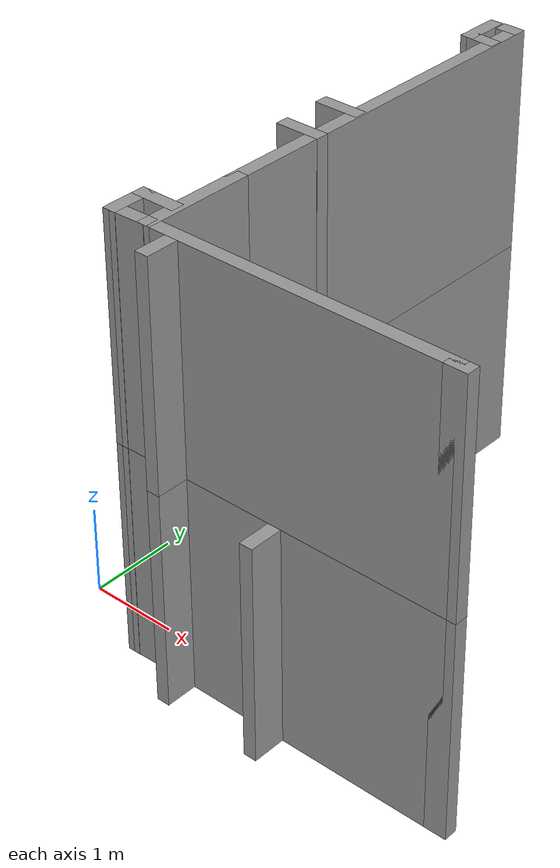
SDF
<sdf version="1.6">
 <model name="TwoStoreyBuilding">
  <link name="Wall_102">
   <pose>1.325 4.825 2.5 0 -0 0</pose>
   <visual name="Wall_102_Visual">
    <pose>0 0 1.25 0 -0 0</pose>
    <geometry><box><size>0.25 0.15 2.5</size></box></geometry>
    <material>
     <script><uri>file://media/materials/scripts/gazebo.material</uri><name>Gazebo/Grey</name></script>
     <ambient>1 1 1 1</ambient>
    </material>
    <meta><layer>1</layer></meta>
   </visual>
   <collision name="Wall_102_Collision">
    <pose>0 0 1.25 0 -0 0</pose>
    <geometry><box><size>0.25 0.15 2.5</size></box></geometry>
    <surface>
     <friction>
      <ode><mu>1</mu><mu2>1</mu2><fdir1>0 0 0</fdir1><slip1>0</slip1><slip2>0</slip2></ode>
      <torsional>
       <coefficient>1</coefficient>
       <patch_radius>0</patch_radius>
       <surface_radius>0</surface_radius>
       <use_patch_radius>1</use_patch_radius>
       <ode><slip>0</slip></ode>
      </torsional>
     </friction>
     <bounce><restitution_coefficient>0</restitution_coefficient><threshold>1e+06</threshold></bounce>
     <contact>
      <collide_without_contact>0</collide_without_contact>
      <collide_without_contact_bitmask>1</collide_without_contact_bitmask>
      <collide_bitmask>1</collide_bitmask>
      <ode>
       <soft_cfm>0</soft_cfm>
       <soft_erp>0.2</soft_erp>
       <kp>1e+13</kp>
       <kd>1</kd>
       <max_vel>0.01</max_vel>
       <min_depth>0</min_depth>
      </ode>
      <bullet>
       <split_impulse>1</split_impulse>
       <split_impulse_penetration_threshold>-0.01</split_impulse_penetration_threshold>
       <soft_cfm>0</soft_cfm>
       <soft_erp>0.2</soft_erp>
       <kp>1e+13</kp>
       <kd>1</kd>
      </bullet>
     </contact>
    </surface>
   </collision>
  </link>
  <link name="Wall_103">
   <pose>1.375 2.775 2.5 0 0 -1.5708</pose>
   <visual name="Wall_103_Visual">
    <pose>0 0 1.25 0 -0 0</pose>
    <geometry><box><size>4.25 0.15 2.5</size></box></geometry>
    <material>
     <script><uri>file://media/materials/scripts/gazebo.material</uri><name>Gazebo/Grey</name></script>
     <ambient>1 1 1 1</ambient>
    </material>
    <meta><layer>1</layer></meta>
   </visual>
   <collision name="Wall_103_Collision">
    <pose>0 0 1.25 0 -0 0</pose>
    <geometry><box><size>4.25 0.15 2.5</size></box></geometry>
    <surface>
     <friction>
      <ode><mu>1</mu><mu2>1</mu2><fdir1>0 0 0</fdir1><slip1>0</slip1><slip2>0</slip2></ode>
      <torsional>
       <coefficient>1</coefficient>
       <patch_radius>0</patch_radius>
       <surface_radius>0</surface_radius>
       <use_patch_radius>1</use_patch_radius>
       <ode><slip>0</slip></ode>
      </torsional>
     </friction>
     <bounce><restitution_coefficient>0</restitution_coefficient><threshold>1e+06</threshold></bounce>
     <contact>
      <collide_without_contact>0</collide_without_contact>
      <collide_without_contact_bitmask>1</collide_without_contact_bitmask>
      <collide_bitmask>1</collide_bitmask>
      <ode>
       <soft_cfm>0</soft_cfm>
       <soft_erp>0.2</soft_erp>
       <kp>1e+13</kp>
       <kd>1</kd>
       <max_vel>0.01</max_vel>
       <min_depth>0</min_depth>
      </ode>
      <bullet>
       <split_impulse>1</split_impulse>
       <split_impulse_penetration_threshold>-0.01</split_impulse_penetration_threshold>
       <soft_cfm>0</soft_cfm>
       <soft_erp>0.2</soft_erp>
       <kp>1e+13</kp>
       <kd>1</kd>
      </bullet>
     </contact>
    </surface>
   </collision>
  </link>
  <link name="Wall_104">
   <pose>1.375 0.175 2.5 0 0 -1.5708</pose>
   <visual name="Wall_104_Visual">
    <pose>0 0 1.25 0 -0 0</pose>
    <geometry><box><size>1.25 0.15 2.5</size></box></geometry>
    <material>
     <script><uri>file://media/materials/scripts/gazebo.material</uri><name>Gazebo/Grey</name></script>
     <ambient>1 1 1 1</ambient>
    </material>
    <meta><layer>1</layer></meta>
   </visual>
   <collision name="Wall_104_Collision">
    <pose>0 0 1.25 0 -0 0</pose>
    <geometry><box><size>1.25 0.15 2.5</size></box></geometry>
    <surface>
     <friction>
      <ode><mu>1</mu><mu2>1</mu2><fdir1>0 0 0</fdir1><slip1>0</slip1><slip2>0</slip2></ode>
      <torsional>
       <coefficient>1</coefficient>
       <patch_radius>0</patch_radius>
       <surface_radius>0</surface_radius>
       <use_patch_radius>1</use_patch_radius>
       <ode><slip>0</slip></ode>
      </torsional>
     </friction>
     <bounce><restitution_coefficient>0</restitution_coefficient><threshold>1e+06</threshold></bounce>
     <contact>
      <collide_without_contact>0</collide_without_contact>
      <collide_without_contact_bitmask>1</collide_without_contact_bitmask>
      <collide_bitmask>1</collide_bitmask>
      <ode>
       <soft_cfm>0</soft_cfm>
       <soft_erp>0.2</soft_erp>
       <kp>1e+13</kp>
       <kd>1</kd>
       <max_vel>0.01</max_vel>
       <min_depth>0</min_depth>
      </ode>
      <bullet>
       <split_impulse>1</split_impulse>
       <split_impulse_penetration_threshold>-0.01</split_impulse_penetration_threshold>
       <soft_cfm>0</soft_cfm>
       <soft_erp>0.2</soft_erp>
       <kp>1e+13</kp>
       <kd>1</kd>
      </bullet>
     </contact>
    </surface>
   </collision>
  </link>
  <link name="Wall_105">
   <pose>3.05 -0.375 2.5 0 -0 0</pose>
   <visual name="Wall_105_Visual">
    <pose>0 0 1.25 0 -0 0</pose>
    <geometry><box><size>3.5 0.15 2.5</size></box></geometry>
    <material>
     <script><uri>file://media/materials/scripts/gazebo.material</uri><name>Gazebo/Grey</name></script>
     <ambient>1 1 1 1</ambient>
    </material>
    <meta><layer>1</layer></meta>
   </visual>
   <collision name="Wall_105_Collision">
    <pose>0 0 1.25 0 -0 0</pose>
    <geometry><box><size>3.5 0.15 2.5</size></box></geometry>
    <surface>
     <friction>
      <ode><mu>1</mu><mu2>1</mu2><fdir1>0 0 0</fdir1><slip1>0</slip1><slip2>0</slip2></ode>
      <torsional>
       <coefficient>1</coefficient>
       <patch_radius>0</patch_radius>
       <surface_radius>0</surface_radius>
       <use_patch_radius>1</use_patch_radius>
       <ode><slip>0</slip></ode>
      </torsional>
     </friction>
     <bounce><restitution_coefficient>0</restitution_coefficient><threshold>1e+06</threshold></bounce>
     <contact>
      <collide_without_contact>0</collide_without_contact>
      <collide_without_contact_bitmask>1</collide_without_contact_bitmask>
      <collide_bitmask>1</collide_bitmask>
      <ode>
       <soft_cfm>0</soft_cfm>
       <soft_erp>0.2</soft_erp>
       <kp>1e+13</kp>
       <kd>1</kd>
       <max_vel>0.01</max_vel>
       <min_depth>0</min_depth>
      </ode>
      <bullet>
       <split_impulse>1</split_impulse>
       <split_impulse_penetration_threshold>-0.01</split_impulse_penetration_threshold>
       <soft_cfm>0</soft_cfm>
       <soft_erp>0.2</soft_erp>
       <kp>1e+13</kp>
       <kd>1</kd>
      </bullet>
     </contact>
    </surface>
   </collision>
  </link>
  <link name="Wall_106">
   <pose>4.775 -0.375 2.5 0 -0 0</pose>
   <visual name="Wall_106_Visual">
    <pose>0 0 1.25 0 -0 0</pose>
    <geometry><box><size>0.25 0.15 2.5</size></box></geometry>
    <material>
     <script><uri>file://media/materials/scripts/gazebo.material</uri><name>Gazebo/Grey</name></script>
     <ambient>1 1 1 1</ambient>
    </material>
    <meta><layer>1</layer></meta>
   </visual>
   <collision name="Wall_106_Collision">
    <pose>0 0 1.25 0 -0 0</pose>
    <geometry><box><size>0.25 0.15 2.5</size></box></geometry>
    <surface>
     <friction>
      <ode><mu>1</mu><mu2>1</mu2><fdir1>0 0 0</fdir1><slip1>0</slip1><slip2>0</slip2></ode>
      <torsional>
       <coefficient>1</coefficient>
       <patch_radius>0</patch_radius>
       <surface_radius>0</surface_radius>
       <use_patch_radius>1</use_patch_radius>
       <ode><slip>0</slip></ode>
      </torsional>
     </friction>
     <bounce><restitution_coefficient>0</restitution_coefficient><threshold>1e+06</threshold></bounce>
     <contact>
      <collide_without_contact>0</collide_without_contact>
      <collide_without_contact_bitmask>1</collide_without_contact_bitmask>
      <collide_bitmask>1</collide_bitmask>
      <ode>
       <soft_cfm>0</soft_cfm>
       <soft_erp>0.2</soft_erp>
       <kp>1e+13</kp>
       <kd>1</kd>
       <max_vel>0.01</max_vel>
       <min_depth>0</min_depth>
      </ode>
      <bullet>
       <split_impulse>1</split_impulse>
       <split_impulse_penetration_threshold>-0.01</split_impulse_penetration_threshold>
       <soft_cfm>0</soft_cfm>
       <soft_erp>0.2</soft_erp>
       <kp>1e+13</kp>
       <kd>1</kd>
      </bullet>
     </contact>
    </surface>
   </collision>
  </link>
  <link name="Wall_123">
   <pose>1.71402 -0.561102 2.5 0 0 -1.5708</pose>
   <visual name="Wall_123_Visual">
    <pose>0 0 1.25 0 -0 0</pose>
    <geometry><box><size>0.5 0.15 2.5</size></box></geometry>
    <material>
     <script><uri>file://media/materials/scripts/gazebo.material</uri><name>Gazebo/Grey</name></script>
     <ambient>1 1 1 1</ambient>
    </material>
    <meta><layer>1</layer></meta>
   </visual>
   <collision name="Wall_123_Collision">
    <pose>0 0 1.25 0 -0 0</pose>
    <geometry><box><size>0.5 0.15 2.5</size></box></geometry>
    <surface>
     <friction>
      <ode><mu>1</mu><mu2>1</mu2><fdir1>0 0 0</fdir1><slip1>0</slip1><slip2>0</slip2></ode>
      <torsional>
       <coefficient>1</coefficient>
       <patch_radius>0</patch_radius>
       <surface_radius>0</surface_radius>
       <use_patch_radius>1</use_patch_radius>
       <ode><slip>0</slip></ode>
      </torsional>
     </friction>
     <bounce><restitution_coefficient>0</restitution_coefficient><threshold>1e+06</threshold></bounce>
     <contact>
      <collide_without_contact>0</collide_without_contact>
      <collide_without_contact_bitmask>1</collide_without_contact_bitmask>
      <collide_bitmask>1</collide_bitmask>
      <ode>
       <soft_cfm>0</soft_cfm>
       <soft_erp>0.2</soft_erp>
       <kp>1e+13</kp>
       <kd>1</kd>
       <max_vel>0.01</max_vel>
       <min_depth>0</min_depth>
      </ode>
      <bullet>
       <split_impulse>1</split_impulse>
       <split_impulse_penetration_threshold>-0.01</split_impulse_penetration_threshold>
       <soft_cfm>0</soft_cfm>
       <soft_erp>0.2</soft_erp>
       <kp>1e+13</kp>
       <kd>1</kd>
      </bullet>
     </contact>
    </surface>
   </collision>
  </link>
  <link name="Wall_127">
   <pose>1.20108 1.80388 2.5 0 -0 3.14159</pose>
   <visual name="Wall_127_Visual">
    <pose>0 0 1.25 0 -0 0</pose>
    <geometry><box><size>0.5 0.15 2.5</size></box></geometry>
    <material>
     <script><uri>file://media/materials/scripts/gazebo.material</uri><name>Gazebo/Grey</name></script>
     <ambient>1 1 1 1</ambient>
    </material>
    <meta><layer>1</layer></meta>
   </visual>
   <collision name="Wall_127_Collision">
    <pose>0 0 1.25 0 -0 0</pose>
    <geometry><box><size>0.5 0.15 2.5</size></box></geometry>
    <surface>
     <friction>
      <ode><mu>1</mu><mu2>1</mu2><fdir1>0 0 0</fdir1><slip1>0</slip1><slip2>0</slip2></ode>
      <torsional>
       <coefficient>1</coefficient>
       <patch_radius>0</patch_radius>
       <surface_radius>0</surface_radius>
       <use_patch_radius>1</use_patch_radius>
       <ode><slip>0</slip></ode>
      </torsional>
     </friction>
     <bounce><restitution_coefficient>0</restitution_coefficient><threshold>1e+06</threshold></bounce>
     <contact>
      <collide_without_contact>0</collide_without_contact>
      <collide_without_contact_bitmask>1</collide_without_contact_bitmask>
      <collide_bitmask>1</collide_bitmask>
      <ode>
       <soft_cfm>0</soft_cfm>
       <soft_erp>0.2</soft_erp>
       <kp>1e+13</kp>
       <kd>1</kd>
       <max_vel>0.01</max_vel>
       <min_depth>0</min_depth>
      </ode>
      <bullet>
       <split_impulse>1</split_impulse>
       <split_impulse_penetration_threshold>-0.01</split_impulse_penetration_threshold>
       <soft_cfm>0</soft_cfm>
       <soft_erp>0.2</soft_erp>
       <kp>1e+13</kp>
       <kd>1</kd>
      </bullet>
     </contact>
    </surface>
   </collision>
  </link>
  <link name="Wall_128">
   <pose>1.18136 2.37591 2.5 0 -0 3.14159</pose>
   <visual name="Wall_128_Visual">
    <pose>0 0 1.25 0 -0 0</pose>
    <geometry><box><size>0.5 0.15 2.5</size></box></geometry>
    <material>
     <script><uri>file://media/materials/scripts/gazebo.material</uri><name>Gazebo/Grey</name></script>
     <ambient>1 1 1 1</ambient>
    </material>
    <meta><layer>1</layer></meta>
   </visual>
   <collision name="Wall_128_Collision">
    <pose>0 0 1.25 0 -0 0</pose>
    <geometry><box><size>0.5 0.15 2.5</size></box></geometry>
    <surface>
     <friction>
      <ode><mu>1</mu><mu2>1</mu2><fdir1>0 0 0</fdir1><slip1>0</slip1><slip2>0</slip2></ode>
      <torsional>
       <coefficient>1</coefficient>
       <patch_radius>0</patch_radius>
       <surface_radius>0</surface_radius>
       <use_patch_radius>1</use_patch_radius>
       <ode><slip>0</slip></ode>
      </torsional>
     </friction>
     <bounce><restitution_coefficient>0</restitution_coefficient><threshold>1e+06</threshold></bounce>
     <contact>
      <collide_without_contact>0</collide_without_contact>
      <collide_without_contact_bitmask>1</collide_without_contact_bitmask>
      <collide_bitmask>1</collide_bitmask>
      <ode>
       <soft_cfm>0</soft_cfm>
       <soft_erp>0.2</soft_erp>
       <kp>1e+13</kp>
       <kd>1</kd>
       <max_vel>0.01</max_vel>
       <min_depth>0</min_depth>
      </ode>
      <bullet>
       <split_impulse>1</split_impulse>
       <split_impulse_penetration_threshold>-0.01</split_impulse_penetration_threshold>
       <soft_cfm>0</soft_cfm>
       <soft_erp>0.2</soft_erp>
       <kp>1e+13</kp>
       <kd>1</kd>
      </bullet>
     </contact>
    </surface>
   </collision>
  </link>
  <link name="Wall_129">
   <pose>1.11308 4.6403 2.5 0 0 -1.5708</pose>
   <visual name="Wall_129_Visual">
    <pose>0 0 1.25 0 -0 0</pose>
    <geometry><box><size>0.5 0.15 2.5</size></box></geometry>
    <material>
     <script><uri>file://media/materials/scripts/gazebo.material</uri><name>Gazebo/Grey</name></script>
     <ambient>1 1 1 1</ambient>
    </material>
    <meta><layer>1</layer></meta>
   </visual>
   <collision name="Wall_129_Collision">
    <pose>0 0 1.25 0 -0 0</pose>
    <geometry><box><size>0.5 0.15 2.5</size></box></geometry>
    <surface>
     <friction>
      <ode><mu>1</mu><mu2>1</mu2><fdir1>0 0 0</fdir1><slip1>0</slip1><slip2>0</slip2></ode>
      <torsional>
       <coefficient>1</coefficient>
       <patch_radius>0</patch_radius>
       <surface_radius>0</surface_radius>
       <use_patch_radius>1</use_patch_radius>
       <ode><slip>0</slip></ode>
      </torsional>
     </friction>
     <bounce><restitution_coefficient>0</restitution_coefficient><threshold>1e+06</threshold></bounce>
     <contact>
      <collide_without_contact>0</collide_without_contact>
      <collide_without_contact_bitmask>1</collide_without_contact_bitmask>
      <collide_bitmask>1</collide_bitmask>
      <ode>
       <soft_cfm>0</soft_cfm>
       <soft_erp>0.2</soft_erp>
       <kp>1e+13</kp>
       <kd>1</kd>
       <max_vel>0.01</max_vel>
       <min_depth>0</min_depth>
      </ode>
      <bullet>
       <split_impulse>1</split_impulse>
       <split_impulse_penetration_threshold>-0.01</split_impulse_penetration_threshold>
       <soft_cfm>0</soft_cfm>
       <soft_erp>0.2</soft_erp>
       <kp>1e+13</kp>
       <kd>1</kd>
      </bullet>
     </contact>
    </surface>
   </collision>
  </link>
  <link name="Wall_130">
   <pose>1.238 4.45948 2.5 0 0 -0.046529</pose>
   <visual name="Wall_130_Visual">
    <pose>0 0 1.25 0 -0 0</pose>
    <geometry><box><size>0.400127 0.15 2.5</size></box></geometry>
    <material>
     <script><uri>file://media/materials/scripts/gazebo.material</uri><name>Gazebo/Grey</name></script>
     <ambient>1 1 1 1</ambient>
    </material>
    <meta><layer>1</layer></meta>
   </visual>
   <collision name="Wall_130_Collision">
    <pose>0 0 1.25 0 -0 0</pose>
    <geometry><box><size>0.400127 0.15 2.5</size></box></geometry>
    <surface>
     <friction>
      <ode><mu>1</mu><mu2>1</mu2><fdir1>0 0 0</fdir1><slip1>0</slip1><slip2>0</slip2></ode>
      <torsional>
       <coefficient>1</coefficient>
       <patch_radius>0</patch_radius>
       <surface_radius>0</surface_radius>
       <use_patch_radius>1</use_patch_radius>
       <ode><slip>0</slip></ode>
      </torsional>
     </friction>
     <bounce><restitution_coefficient>0</restitution_coefficient><threshold>1e+06</threshold></bounce>
     <contact>
      <collide_without_contact>0</collide_without_contact>
      <collide_without_contact_bitmask>1</collide_without_contact_bitmask>
      <collide_bitmask>1</collide_bitmask>
      <ode>
       <soft_cfm>0</soft_cfm>
       <soft_erp>0.2</soft_erp>
       <kp>1e+13</kp>
       <kd>1</kd>
       <max_vel>0.01</max_vel>
       <min_depth>0</min_depth>
      </ode>
      <bullet>
       <split_impulse>1</split_impulse>
       <split_impulse_penetration_threshold>-0.01</split_impulse_penetration_threshold>
       <soft_cfm>0</soft_cfm>
       <soft_erp>0.2</soft_erp>
       <kp>1e+13</kp>
       <kd>1</kd>
      </bullet>
     </contact>
    </surface>
   </collision>
  </link>
  <link name="Wall_133">
   <pose>1.14545 -0.037473 2.5 0 -0 3.14159</pose>
   <visual name="Wall_133_Visual">
    <pose>0 0 1.25 0 -0 0</pose>
    <geometry><box><size>0.5 0.15 2.5</size></box></geometry>
    <material>
     <script><uri>file://media/materials/scripts/gazebo.material</uri><name>Gazebo/Grey</name></script>
     <ambient>1 1 1 1</ambient>
    </material>
    <meta><layer>1</layer></meta>
   </visual>
   <collision name="Wall_133_Collision">
    <pose>0 0 1.25 0 -0 0</pose>
    <geometry><box><size>0.5 0.15 2.5</size></box></geometry>
    <surface>
     <friction>
      <ode><mu>1</mu><mu2>1</mu2><fdir1>0 0 0</fdir1><slip1>0</slip1><slip2>0</slip2></ode>
      <torsional>
       <coefficient>1</coefficient>
       <patch_radius>0</patch_radius>
       <surface_radius>0</surface_radius>
       <use_patch_radius>1</use_patch_radius>
       <ode><slip>0</slip></ode>
      </torsional>
     </friction>
     <bounce><restitution_coefficient>0</restitution_coefficient><threshold>1e+06</threshold></bounce>
     <contact>
      <collide_without_contact>0</collide_without_contact>
      <collide_without_contact_bitmask>1</collide_without_contact_bitmask>
      <collide_bitmask>1</collide_bitmask>
      <ode>
       <soft_cfm>0</soft_cfm>
       <soft_erp>0.2</soft_erp>
       <kp>1e+13</kp>
       <kd>1</kd>
       <max_vel>0.01</max_vel>
       <min_depth>0</min_depth>
      </ode>
      <bullet>
       <split_impulse>1</split_impulse>
       <split_impulse_penetration_threshold>-0.01</split_impulse_penetration_threshold>
       <soft_cfm>0</soft_cfm>
       <soft_erp>0.2</soft_erp>
       <kp>1e+13</kp>
       <kd>1</kd>
      </bullet>
     </contact>
    </surface>
   </collision>
  </link>
  <link name="Wall_134">
   <pose>0.97045 -0.212473 2.5 0 0 -1.5708</pose>
   <visual name="Wall_134_Visual">
    <pose>0 0 1.25 0 -0 0</pose>
    <geometry><box><size>0.5 0.15 2.5</size></box></geometry>
    <material>
     <script><uri>file://media/materials/scripts/gazebo.material</uri><name>Gazebo/Grey</name></script>
     <ambient>1 1 1 1</ambient>
    </material>
    <meta><layer>1</layer></meta>
   </visual>
   <collision name="Wall_134_Collision">
    <pose>0 0 1.25 0 -0 0</pose>
    <geometry><box><size>0.5 0.15 2.5</size></box></geometry>
    <surface>
     <friction>
      <ode><mu>1</mu><mu2>1</mu2><fdir1>0 0 0</fdir1><slip1>0</slip1><slip2>0</slip2></ode>
      <torsional>
       <coefficient>1</coefficient>
       <patch_radius>0</patch_radius>
       <surface_radius>0</surface_radius>
       <use_patch_radius>1</use_patch_radius>
       <ode><slip>0</slip></ode>
      </torsional>
     </friction>
     <bounce><restitution_coefficient>0</restitution_coefficient><threshold>1e+06</threshold></bounce>
     <contact>
      <collide_without_contact>0</collide_without_contact>
      <collide_without_contact_bitmask>1</collide_without_contact_bitmask>
      <collide_bitmask>1</collide_bitmask>
      <ode>
       <soft_cfm>0</soft_cfm>
       <soft_erp>0.2</soft_erp>
       <kp>1e+13</kp>
       <kd>1</kd>
       <max_vel>0.01</max_vel>
       <min_depth>0</min_depth>
      </ode>
      <bullet>
       <split_impulse>1</split_impulse>
       <split_impulse_penetration_threshold>-0.01</split_impulse_penetration_threshold>
       <soft_cfm>0</soft_cfm>
       <soft_erp>0.2</soft_erp>
       <kp>1e+13</kp>
       <kd>1</kd>
      </bullet>
     </contact>
    </surface>
   </collision>
  </link>
  <link name="Wall_135">
   <pose>1.17273 -0.381237 2.5 0 -0 0.030821</pose>
   <visual name="Wall_135_Visual">
    <pose>0 0 1.25 0 -0 0</pose>
    <geometry><box><size>0.554742 0.15 2.5</size></box></geometry>
    <material>
     <script><uri>file://media/materials/scripts/gazebo.material</uri><name>Gazebo/Grey</name></script>
     <ambient>1 1 1 1</ambient>
    </material>
    <meta><layer>1</layer></meta>
   </visual>
   <collision name="Wall_135_Collision">
    <pose>0 0 1.25 0 -0 0</pose>
    <geometry><box><size>0.554742 0.15 2.5</size></box></geometry>
    <surface>
     <friction>
      <ode><mu>1</mu><mu2>1</mu2><fdir1>0 0 0</fdir1><slip1>0</slip1><slip2>0</slip2></ode>
      <torsional>
       <coefficient>1</coefficient>
       <patch_radius>0</patch_radius>
       <surface_radius>0</surface_radius>
       <use_patch_radius>1</use_patch_radius>
       <ode><slip>0</slip></ode>
      </torsional>
     </friction>
     <bounce><restitution_coefficient>0</restitution_coefficient><threshold>1e+06</threshold></bounce>
     <contact>
      <collide_without_contact>0</collide_without_contact>
      <collide_without_contact_bitmask>1</collide_without_contact_bitmask>
      <collide_bitmask>1</collide_bitmask>
      <ode>
       <soft_cfm>0</soft_cfm>
       <soft_erp>0.2</soft_erp>
       <kp>1e+13</kp>
       <kd>1</kd>
       <max_vel>0.01</max_vel>
       <min_depth>0</min_depth>
      </ode>
      <bullet>
       <split_impulse>1</split_impulse>
       <split_impulse_penetration_threshold>-0.01</split_impulse_penetration_threshold>
       <soft_cfm>0</soft_cfm>
       <soft_erp>0.2</soft_erp>
       <kp>1e+13</kp>
       <kd>1</kd>
      </bullet>
     </contact>
    </surface>
   </collision>
  </link>
  <link name="Wall_25">
   <pose>1.325 4.825 0 0 -0 0</pose>
   <visual name="Wall_25_Visual">
    <pose>0 0 1.25 0 -0 0</pose>
    <geometry><box><size>0.25 0.15 2.5</size></box></geometry>
    <material>
     <script><uri>file://media/materials/scripts/gazebo.material</uri><name>Gazebo/Grey</name></script>
     <ambient>1 1 1 1</ambient>
    </material>
    <meta><layer>0</layer></meta>
   </visual>
   <collision name="Wall_25_Collision">
    <pose>0 0 1.25 0 -0 0</pose>
    <geometry><box><size>0.25 0.15 2.5</size></box></geometry>
    <surface>
     <friction>
      <ode><mu>1</mu><mu2>1</mu2><fdir1>0 0 0</fdir1><slip1>0</slip1><slip2>0</slip2></ode>
      <torsional>
       <coefficient>1</coefficient>
       <patch_radius>0</patch_radius>
       <surface_radius>0</surface_radius>
       <use_patch_radius>1</use_patch_radius>
       <ode><slip>0</slip></ode>
      </torsional>
     </friction>
     <bounce><restitution_coefficient>0</restitution_coefficient><threshold>1e+06</threshold></bounce>
     <contact>
      <collide_without_contact>0</collide_without_contact>
      <collide_without_contact_bitmask>1</collide_without_contact_bitmask>
      <collide_bitmask>1</collide_bitmask>
      <ode>
       <soft_cfm>0</soft_cfm>
       <soft_erp>0.2</soft_erp>
       <kp>1e+13</kp>
       <kd>1</kd>
       <max_vel>0.01</max_vel>
       <min_depth>0</min_depth>
      </ode>
      <bullet>
       <split_impulse>1</split_impulse>
       <split_impulse_penetration_threshold>-0.01</split_impulse_penetration_threshold>
       <soft_cfm>0</soft_cfm>
       <soft_erp>0.2</soft_erp>
       <kp>1e+13</kp>
       <kd>1</kd>
      </bullet>
     </contact>
    </surface>
   </collision>
  </link>
  <link name="Wall_26">
   <pose>1.375 2.775 0 0 0 -1.5708</pose>
   <visual name="Wall_26_Visual">
    <pose>0 0 1.25 0 -0 0</pose>
    <geometry><box><size>4.25 0.15 2.5</size></box></geometry>
    <material>
     <script><uri>file://media/materials/scripts/gazebo.material</uri><name>Gazebo/Grey</name></script>
     <ambient>1 1 1 1</ambient>
    </material>
    <meta><layer>0</layer></meta>
   </visual>
   <collision name="Wall_26_Collision">
    <pose>0 0 1.25 0 -0 0</pose>
    <geometry><box><size>4.25 0.15 2.5</size></box></geometry>
    <surface>
     <friction>
      <ode><mu>1</mu><mu2>1</mu2><fdir1>0 0 0</fdir1><slip1>0</slip1><slip2>0</slip2></ode>
      <torsional>
       <coefficient>1</coefficient>
       <patch_radius>0</patch_radius>
       <surface_radius>0</surface_radius>
       <use_patch_radius>1</use_patch_radius>
       <ode><slip>0</slip></ode>
      </torsional>
     </friction>
     <bounce><restitution_coefficient>0</restitution_coefficient><threshold>1e+06</threshold></bounce>
     <contact>
      <collide_without_contact>0</collide_without_contact>
      <collide_without_contact_bitmask>1</collide_without_contact_bitmask>
      <collide_bitmask>1</collide_bitmask>
      <ode>
       <soft_cfm>0</soft_cfm>
       <soft_erp>0.2</soft_erp>
       <kp>1e+13</kp>
       <kd>1</kd>
       <max_vel>0.01</max_vel>
       <min_depth>0</min_depth>
      </ode>
      <bullet>
       <split_impulse>1</split_impulse>
       <split_impulse_penetration_threshold>-0.01</split_impulse_penetration_threshold>
       <soft_cfm>0</soft_cfm>
       <soft_erp>0.2</soft_erp>
       <kp>1e+13</kp>
       <kd>1</kd>
      </bullet>
     </contact>
    </surface>
   </collision>
  </link>
  <link name="Wall_28">
   <pose>1.375 0.175 0 0 0 -1.5708</pose>
   <visual name="Wall_28_Visual">
    <pose>0 0 1.25 0 -0 0</pose>
    <geometry><box><size>1.25 0.15 2.5</size></box></geometry>
    <material>
     <script><uri>file://media/materials/scripts/gazebo.material</uri><name>Gazebo/Grey</name></script>
     <ambient>1 1 1 1</ambient>
    </material>
    <meta><layer>0</layer></meta>
   </visual>
   <collision name="Wall_28_Collision">
    <pose>0 0 1.25 0 -0 0</pose>
    <geometry><box><size>1.25 0.15 2.5</size></box></geometry>
    <surface>
     <friction>
      <ode><mu>1</mu><mu2>1</mu2><fdir1>0 0 0</fdir1><slip1>0</slip1><slip2>0</slip2></ode>
      <torsional>
       <coefficient>1</coefficient>
       <patch_radius>0</patch_radius>
       <surface_radius>0</surface_radius>
       <use_patch_radius>1</use_patch_radius>
       <ode><slip>0</slip></ode>
      </torsional>
     </friction>
     <bounce><restitution_coefficient>0</restitution_coefficient><threshold>1e+06</threshold></bounce>
     <contact>
      <collide_without_contact>0</collide_without_contact>
      <collide_without_contact_bitmask>1</collide_without_contact_bitmask>
      <collide_bitmask>1</collide_bitmask>
      <ode>
       <soft_cfm>0</soft_cfm>
       <soft_erp>0.2</soft_erp>
       <kp>1e+13</kp>
       <kd>1</kd>
       <max_vel>0.01</max_vel>
       <min_depth>0</min_depth>
      </ode>
      <bullet>
       <split_impulse>1</split_impulse>
       <split_impulse_penetration_threshold>-0.01</split_impulse_penetration_threshold>
       <soft_cfm>0</soft_cfm>
       <soft_erp>0.2</soft_erp>
       <kp>1e+13</kp>
       <kd>1</kd>
      </bullet>
     </contact>
    </surface>
   </collision>
  </link>
  <link name="Wall_29">
   <pose>3.05 -0.375 0 0 -0 0</pose>
   <visual name="Wall_29_Visual">
    <pose>0 0 1.25 0 -0 0</pose>
    <geometry><box><size>3.5 0.15 2.5</size></box></geometry>
    <material>
     <script><uri>file://media/materials/scripts/gazebo.material</uri><name>Gazebo/Grey</name></script>
     <ambient>1 1 1 1</ambient>
    </material>
    <meta><layer>0</layer></meta>
   </visual>
   <collision name="Wall_29_Collision">
    <pose>0 0 1.25 0 -0 0</pose>
    <geometry><box><size>3.5 0.15 2.5</size></box></geometry>
    <surface>
     <friction>
      <ode><mu>1</mu><mu2>1</mu2><fdir1>0 0 0</fdir1><slip1>0</slip1><slip2>0</slip2></ode>
      <torsional>
       <coefficient>1</coefficient>
       <patch_radius>0</patch_radius>
       <surface_radius>0</surface_radius>
       <use_patch_radius>1</use_patch_radius>
       <ode><slip>0</slip></ode>
      </torsional>
     </friction>
     <bounce><restitution_coefficient>0</restitution_coefficient><threshold>1e+06</threshold></bounce>
     <contact>
      <collide_without_contact>0</collide_without_contact>
      <collide_without_contact_bitmask>1</collide_without_contact_bitmask>
      <collide_bitmask>1</collide_bitmask>
      <ode>
       <soft_cfm>0</soft_cfm>
       <soft_erp>0.2</soft_erp>
       <kp>1e+13</kp>
       <kd>1</kd>
       <max_vel>0.01</max_vel>
       <min_depth>0</min_depth>
      </ode>
      <bullet>
       <split_impulse>1</split_impulse>
       <split_impulse_penetration_threshold>-0.01</split_impulse_penetration_threshold>
       <soft_cfm>0</soft_cfm>
       <soft_erp>0.2</soft_erp>
       <kp>1e+13</kp>
       <kd>1</kd>
      </bullet>
     </contact>
    </surface>
   </collision>
  </link>
  <link name="Wall_30">
   <pose>4.775 -0.375 0 0 -0 0</pose>
   <visual name="Wall_30_Visual">
    <pose>0 0 1.25 0 -0 0</pose>
    <geometry><box><size>0.25 0.15 2.5</size></box></geometry>
    <material>
     <script><uri>file://media/materials/scripts/gazebo.material</uri><name>Gazebo/Grey</name></script>
     <ambient>1 1 1 1</ambient>
    </material>
    <meta><layer>0</layer></meta>
   </visual>
   <collision name="Wall_30_Collision">
    <pose>0 0 1.25 0 -0 0</pose>
    <geometry><box><size>0.25 0.15 2.5</size></box></geometry>
    <surface>
     <friction>
      <ode><mu>1</mu><mu2>1</mu2><fdir1>0 0 0</fdir1><slip1>0</slip1><slip2>0</slip2></ode>
      <torsional>
       <coefficient>1</coefficient>
       <patch_radius>0</patch_radius>
       <surface_radius>0</surface_radius>
       <use_patch_radius>1</use_patch_radius>
       <ode><slip>0</slip></ode>
      </torsional>
     </friction>
     <bounce><restitution_coefficient>0</restitution_coefficient><threshold>1e+06</threshold></bounce>
     <contact>
      <collide_without_contact>0</collide_without_contact>
      <collide_without_contact_bitmask>1</collide_without_contact_bitmask>
      <collide_bitmask>1</collide_bitmask>
      <ode>
       <soft_cfm>0</soft_cfm>
       <soft_erp>0.2</soft_erp>
       <kp>1e+13</kp>
       <kd>1</kd>
       <max_vel>0.01</max_vel>
       <min_depth>0</min_depth>
      </ode>
      <bullet>
       <split_impulse>1</split_impulse>
       <split_impulse_penetration_threshold>-0.01</split_impulse_penetration_threshold>
       <soft_cfm>0</soft_cfm>
       <soft_erp>0.2</soft_erp>
       <kp>1e+13</kp>
       <kd>1</kd>
      </bullet>
     </contact>
    </surface>
   </collision>
  </link>
  <link name="Wall_54">
   <pose>2.86439 -0.57614 0 0 0 -1.5708</pose>
   <visual name="Wall_54_Visual">
    <pose>0 0 1.25 0 -0 0</pose>
    <geometry><box><size>0.5 0.15 2.5</size></box></geometry>
    <material>
     <script><uri>file://media/materials/scripts/gazebo.material</uri><name>Gazebo/Grey</name></script>
     <ambient>1 1 1 1</ambient>
    </material>
    <meta><layer>0</layer></meta>
   </visual>
   <collision name="Wall_54_Collision">
    <pose>0 0 1.25 0 -0 0</pose>
    <geometry><box><size>0.5 0.15 2.5</size></box></geometry>
    <surface>
     <friction>
      <ode><mu>1</mu><mu2>1</mu2><fdir1>0 0 0</fdir1><slip1>0</slip1><slip2>0</slip2></ode>
      <torsional>
       <coefficient>1</coefficient>
       <patch_radius>0</patch_radius>
       <surface_radius>0</surface_radius>
       <use_patch_radius>1</use_patch_radius>
       <ode><slip>0</slip></ode>
      </torsional>
     </friction>
     <bounce><restitution_coefficient>0</restitution_coefficient><threshold>1e+06</threshold></bounce>
     <contact>
      <collide_without_contact>0</collide_without_contact>
      <collide_without_contact_bitmask>1</collide_without_contact_bitmask>
      <collide_bitmask>1</collide_bitmask>
      <ode>
       <soft_cfm>0</soft_cfm>
       <soft_erp>0.2</soft_erp>
       <kp>1e+13</kp>
       <kd>1</kd>
       <max_vel>0.01</max_vel>
       <min_depth>0</min_depth>
      </ode>
      <bullet>
       <split_impulse>1</split_impulse>
       <split_impulse_penetration_threshold>-0.01</split_impulse_penetration_threshold>
       <soft_cfm>0</soft_cfm>
       <soft_erp>0.2</soft_erp>
       <kp>1e+13</kp>
       <kd>1</kd>
      </bullet>
     </contact>
    </surface>
   </collision>
  </link>
  <link name="Wall_57">
   <pose>1.71402 -0.561102 0 0 0 -1.5708</pose>
   <visual name="Wall_57_Visual">
    <pose>0 0 1.25 0 -0 0</pose>
    <geometry><box><size>0.5 0.15 2.5</size></box></geometry>
    <material>
     <script><uri>file://media/materials/scripts/gazebo.material</uri><name>Gazebo/Grey</name></script>
     <ambient>1 1 1 1</ambient>
    </material>
    <meta><layer>0</layer></meta>
   </visual>
   <collision name="Wall_57_Collision">
    <pose>0 0 1.25 0 -0 0</pose>
    <geometry><box><size>0.5 0.15 2.5</size></box></geometry>
    <surface>
     <friction>
      <ode><mu>1</mu><mu2>1</mu2><fdir1>0 0 0</fdir1><slip1>0</slip1><slip2>0</slip2></ode>
      <torsional>
       <coefficient>1</coefficient>
       <patch_radius>0</patch_radius>
       <surface_radius>0</surface_radius>
       <use_patch_radius>1</use_patch_radius>
       <ode><slip>0</slip></ode>
      </torsional>
     </friction>
     <bounce><restitution_coefficient>0</restitution_coefficient><threshold>1e+06</threshold></bounce>
     <contact>
      <collide_without_contact>0</collide_without_contact>
      <collide_without_contact_bitmask>1</collide_without_contact_bitmask>
      <collide_bitmask>1</collide_bitmask>
      <ode>
       <soft_cfm>0</soft_cfm>
       <soft_erp>0.2</soft_erp>
       <kp>1e+13</kp>
       <kd>1</kd>
       <max_vel>0.01</max_vel>
       <min_depth>0</min_depth>
      </ode>
      <bullet>
       <split_impulse>1</split_impulse>
       <split_impulse_penetration_threshold>-0.01</split_impulse_penetration_threshold>
       <soft_cfm>0</soft_cfm>
       <soft_erp>0.2</soft_erp>
       <kp>1e+13</kp>
       <kd>1</kd>
      </bullet>
     </contact>
    </surface>
   </collision>
  </link>
  <link name="Wall_63">
   <pose>1.20108 1.80388 0 0 -0 3.14159</pose>
   <visual name="Wall_63_Visual">
    <pose>0 0 1.25 0 -0 0</pose>
    <geometry><box><size>0.5 0.15 2.5</size></box></geometry>
    <material>
     <script><uri>file://media/materials/scripts/gazebo.material</uri><name>Gazebo/Grey</name></script>
     <ambient>1 1 1 1</ambient>
    </material>
    <meta><layer>0</layer></meta>
   </visual>
   <collision name="Wall_63_Collision">
    <pose>0 0 1.25 0 -0 0</pose>
    <geometry><box><size>0.5 0.15 2.5</size></box></geometry>
    <surface>
     <friction>
      <ode><mu>1</mu><mu2>1</mu2><fdir1>0 0 0</fdir1><slip1>0</slip1><slip2>0</slip2></ode>
      <torsional>
       <coefficient>1</coefficient>
       <patch_radius>0</patch_radius>
       <surface_radius>0</surface_radius>
       <use_patch_radius>1</use_patch_radius>
       <ode><slip>0</slip></ode>
      </torsional>
     </friction>
     <bounce><restitution_coefficient>0</restitution_coefficient><threshold>1e+06</threshold></bounce>
     <contact>
      <collide_without_contact>0</collide_without_contact>
      <collide_without_contact_bitmask>1</collide_without_contact_bitmask>
      <collide_bitmask>1</collide_bitmask>
      <ode>
       <soft_cfm>0</soft_cfm>
       <soft_erp>0.2</soft_erp>
       <kp>1e+13</kp>
       <kd>1</kd>
       <max_vel>0.01</max_vel>
       <min_depth>0</min_depth>
      </ode>
      <bullet>
       <split_impulse>1</split_impulse>
       <split_impulse_penetration_threshold>-0.01</split_impulse_penetration_threshold>
       <soft_cfm>0</soft_cfm>
       <soft_erp>0.2</soft_erp>
       <kp>1e+13</kp>
       <kd>1</kd>
      </bullet>
     </contact>
    </surface>
   </collision>
  </link>
  <link name="Wall_65">
   <pose>1.18136 2.37591 0 0 -0 3.14159</pose>
   <visual name="Wall_65_Visual">
    <pose>0 0 1.25 0 -0 0</pose>
    <geometry><box><size>0.5 0.15 2.5</size></box></geometry>
    <material>
     <script><uri>file://media/materials/scripts/gazebo.material</uri><name>Gazebo/Grey</name></script>
     <ambient>1 1 1 1</ambient>
    </material>
    <meta><layer>0</layer></meta>
   </visual>
   <collision name="Wall_65_Collision">
    <pose>0 0 1.25 0 -0 0</pose>
    <geometry><box><size>0.5 0.15 2.5</size></box></geometry>
    <surface>
     <friction>
      <ode><mu>1</mu><mu2>1</mu2><fdir1>0 0 0</fdir1><slip1>0</slip1><slip2>0</slip2></ode>
      <torsional>
       <coefficient>1</coefficient>
       <patch_radius>0</patch_radius>
       <surface_radius>0</surface_radius>
       <use_patch_radius>1</use_patch_radius>
       <ode><slip>0</slip></ode>
      </torsional>
     </friction>
     <bounce><restitution_coefficient>0</restitution_coefficient><threshold>1e+06</threshold></bounce>
     <contact>
      <collide_without_contact>0</collide_without_contact>
      <collide_without_contact_bitmask>1</collide_without_contact_bitmask>
      <collide_bitmask>1</collide_bitmask>
      <ode>
       <soft_cfm>0</soft_cfm>
       <soft_erp>0.2</soft_erp>
       <kp>1e+13</kp>
       <kd>1</kd>
       <max_vel>0.01</max_vel>
       <min_depth>0</min_depth>
      </ode>
      <bullet>
       <split_impulse>1</split_impulse>
       <split_impulse_penetration_threshold>-0.01</split_impulse_penetration_threshold>
       <soft_cfm>0</soft_cfm>
       <soft_erp>0.2</soft_erp>
       <kp>1e+13</kp>
       <kd>1</kd>
      </bullet>
     </contact>
    </surface>
   </collision>
  </link>
  <link name="Wall_68">
   <pose>1.11308 4.6403 0 0 0 -1.5708</pose>
   <visual name="Wall_68_Visual">
    <pose>0 0 1.25 0 -0 0</pose>
    <geometry><box><size>0.5 0.15 2.5</size></box></geometry>
    <material>
     <script><uri>file://media/materials/scripts/gazebo.material</uri><name>Gazebo/Grey</name></script>
     <ambient>1 1 1 1</ambient>
    </material>
    <meta><layer>0</layer></meta>
   </visual>
   <collision name="Wall_68_Collision">
    <pose>0 0 1.25 0 -0 0</pose>
    <geometry><box><size>0.5 0.15 2.5</size></box></geometry>
    <surface>
     <friction>
      <ode><mu>1</mu><mu2>1</mu2><fdir1>0 0 0</fdir1><slip1>0</slip1><slip2>0</slip2></ode>
      <torsional>
       <coefficient>1</coefficient>
       <patch_radius>0</patch_radius>
       <surface_radius>0</surface_radius>
       <use_patch_radius>1</use_patch_radius>
       <ode><slip>0</slip></ode>
      </torsional>
     </friction>
     <bounce><restitution_coefficient>0</restitution_coefficient><threshold>1e+06</threshold></bounce>
     <contact>
      <collide_without_contact>0</collide_without_contact>
      <collide_without_contact_bitmask>1</collide_without_contact_bitmask>
      <collide_bitmask>1</collide_bitmask>
      <ode>
       <soft_cfm>0</soft_cfm>
       <soft_erp>0.2</soft_erp>
       <kp>1e+13</kp>
       <kd>1</kd>
       <max_vel>0.01</max_vel>
       <min_depth>0</min_depth>
      </ode>
      <bullet>
       <split_impulse>1</split_impulse>
       <split_impulse_penetration_threshold>-0.01</split_impulse_penetration_threshold>
       <soft_cfm>0</soft_cfm>
       <soft_erp>0.2</soft_erp>
       <kp>1e+13</kp>
       <kd>1</kd>
      </bullet>
     </contact>
    </surface>
   </collision>
  </link>
  <link name="Wall_69">
   <pose>1.238 4.45948 0 0 0 -0.046529</pose>
   <visual name="Wall_69_Visual">
    <pose>0 0 1.25 0 -0 0</pose>
    <geometry><box><size>0.400127 0.15 2.5</size></box></geometry>
    <material>
     <script><uri>file://media/materials/scripts/gazebo.material</uri><name>Gazebo/Grey</name></script>
     <ambient>1 1 1 1</ambient>
    </material>
    <meta><layer>0</layer></meta>
   </visual>
   <collision name="Wall_69_Collision">
    <pose>0 0 1.25 0 -0 0</pose>
    <geometry><box><size>0.400127 0.15 2.5</size></box></geometry>
    <surface>
     <friction>
      <ode><mu>1</mu><mu2>1</mu2><fdir1>0 0 0</fdir1><slip1>0</slip1><slip2>0</slip2></ode>
      <torsional>
       <coefficient>1</coefficient>
       <patch_radius>0</patch_radius>
       <surface_radius>0</surface_radius>
       <use_patch_radius>1</use_patch_radius>
       <ode><slip>0</slip></ode>
      </torsional>
     </friction>
     <bounce><restitution_coefficient>0</restitution_coefficient><threshold>1e+06</threshold></bounce>
     <contact>
      <collide_without_contact>0</collide_without_contact>
      <collide_without_contact_bitmask>1</collide_without_contact_bitmask>
      <collide_bitmask>1</collide_bitmask>
      <ode>
       <soft_cfm>0</soft_cfm>
       <soft_erp>0.2</soft_erp>
       <kp>1e+13</kp>
       <kd>1</kd>
       <max_vel>0.01</max_vel>
       <min_depth>0</min_depth>
      </ode>
      <bullet>
       <split_impulse>1</split_impulse>
       <split_impulse_penetration_threshold>-0.01</split_impulse_penetration_threshold>
       <soft_cfm>0</soft_cfm>
       <soft_erp>0.2</soft_erp>
       <kp>1e+13</kp>
       <kd>1</kd>
      </bullet>
     </contact>
    </surface>
   </collision>
  </link>
  <link name="Wall_75">
   <pose>1.14545 -0.037473 0 0 -0 3.14159</pose>
   <visual name="Wall_75_Visual">
    <pose>0 0 1.25 0 -0 0</pose>
    <geometry><box><size>0.5 0.15 2.5</size></box></geometry>
    <material>
     <script><uri>file://media/materials/scripts/gazebo.material</uri><name>Gazebo/Grey</name></script>
     <ambient>1 1 1 1</ambient>
    </material>
    <meta><layer>0</layer></meta>
   </visual>
   <collision name="Wall_75_Collision">
    <pose>0 0 1.25 0 -0 0</pose>
    <geometry><box><size>0.5 0.15 2.5</size></box></geometry>
    <surface>
     <friction>
      <ode><mu>1</mu><mu2>1</mu2><fdir1>0 0 0</fdir1><slip1>0</slip1><slip2>0</slip2></ode>
      <torsional>
       <coefficient>1</coefficient>
       <patch_radius>0</patch_radius>
       <surface_radius>0</surface_radius>
       <use_patch_radius>1</use_patch_radius>
       <ode><slip>0</slip></ode>
      </torsional>
     </friction>
     <bounce><restitution_coefficient>0</restitution_coefficient><threshold>1e+06</threshold></bounce>
     <contact>
      <collide_without_contact>0</collide_without_contact>
      <collide_without_contact_bitmask>1</collide_without_contact_bitmask>
      <collide_bitmask>1</collide_bitmask>
      <ode>
       <soft_cfm>0</soft_cfm>
       <soft_erp>0.2</soft_erp>
       <kp>1e+13</kp>
       <kd>1</kd>
       <max_vel>0.01</max_vel>
       <min_depth>0</min_depth>
      </ode>
      <bullet>
       <split_impulse>1</split_impulse>
       <split_impulse_penetration_threshold>-0.01</split_impulse_penetration_threshold>
       <soft_cfm>0</soft_cfm>
       <soft_erp>0.2</soft_erp>
       <kp>1e+13</kp>
       <kd>1</kd>
      </bullet>
     </contact>
    </surface>
   </collision>
  </link>
  <link name="Wall_76">
   <pose>0.97045 -0.212473 0 0 0 -1.5708</pose>
   <visual name="Wall_76_Visual">
    <pose>0 0 1.25 0 -0 0</pose>
    <geometry><box><size>0.5 0.15 2.5</size></box></geometry>
    <material>
     <script><uri>file://media/materials/scripts/gazebo.material</uri><name>Gazebo/Grey</name></script>
     <ambient>1 1 1 1</ambient>
    </material>
    <meta><layer>0</layer></meta>
   </visual>
   <collision name="Wall_76_Collision">
    <pose>0 0 1.25 0 -0 0</pose>
    <geometry><box><size>0.5 0.15 2.5</size></box></geometry>
    <surface>
     <friction>
      <ode><mu>1</mu><mu2>1</mu2><fdir1>0 0 0</fdir1><slip1>0</slip1><slip2>0</slip2></ode>
      <torsional>
       <coefficient>1</coefficient>
       <patch_radius>0</patch_radius>
       <surface_radius>0</surface_radius>
       <use_patch_radius>1</use_patch_radius>
       <ode><slip>0</slip></ode>
      </torsional>
     </friction>
     <bounce><restitution_coefficient>0</restitution_coefficient><threshold>1e+06</threshold></bounce>
     <contact>
      <collide_without_contact>0</collide_without_contact>
      <collide_without_contact_bitmask>1</collide_without_contact_bitmask>
      <collide_bitmask>1</collide_bitmask>
      <ode>
       <soft_cfm>0</soft_cfm>
       <soft_erp>0.2</soft_erp>
       <kp>1e+13</kp>
       <kd>1</kd>
       <max_vel>0.01</max_vel>
       <min_depth>0</min_depth>
      </ode>
      <bullet>
       <split_impulse>1</split_impulse>
       <split_impulse_penetration_threshold>-0.01</split_impulse_penetration_threshold>
       <soft_cfm>0</soft_cfm>
       <soft_erp>0.2</soft_erp>
       <kp>1e+13</kp>
       <kd>1</kd>
      </bullet>
     </contact>
    </surface>
   </collision>
  </link>
  <link name="Wall_77">
   <pose>1.17273 -0.381237 0 0 -0 0.030821</pose>
   <visual name="Wall_77_Visual">
    <pose>0 0 1.25 0 -0 0</pose>
    <geometry><box><size>0.554742 0.15 2.5</size></box></geometry>
    <material>
     <script><uri>file://media/materials/scripts/gazebo.material</uri><name>Gazebo/Grey</name></script>
     <ambient>1 1 1 1</ambient>
    </material>
    <meta><layer>0</layer></meta>
   </visual>
   <collision name="Wall_77_Collision">
    <pose>0 0 1.25 0 -0 0</pose>
    <geometry><box><size>0.554742 0.15 2.5</size></box></geometry>
    <surface>
     <friction>
      <ode><mu>1</mu><mu2>1</mu2><fdir1>0 0 0</fdir1><slip1>0</slip1><slip2>0</slip2></ode>
      <torsional>
       <coefficient>1</coefficient>
       <patch_radius>0</patch_radius>
       <surface_radius>0</surface_radius>
       <use_patch_radius>1</use_patch_radius>
       <ode><slip>0</slip></ode>
      </torsional>
     </friction>
     <bounce><restitution_coefficient>0</restitution_coefficient><threshold>1e+06</threshold></bounce>
     <contact>
      <collide_without_contact>0</collide_without_contact>
      <collide_without_contact_bitmask>1</collide_without_contact_bitmask>
      <collide_bitmask>1</collide_bitmask>
      <ode>
       <soft_cfm>0</soft_cfm>
       <soft_erp>0.2</soft_erp>
       <kp>1e+13</kp>
       <kd>1</kd>
       <max_vel>0.01</max_vel>
       <min_depth>0</min_depth>
      </ode>
      <bullet>
       <split_impulse>1</split_impulse>
       <split_impulse_penetration_threshold>-0.01</split_impulse_penetration_threshold>
       <soft_cfm>0</soft_cfm>
       <soft_erp>0.2</soft_erp>
       <kp>1e+13</kp>
       <kd>1</kd>
      </bullet>
     </contact>
    </surface>
   </collision>
  </link>
  <static>1</static>
 </model>
</sdf>
